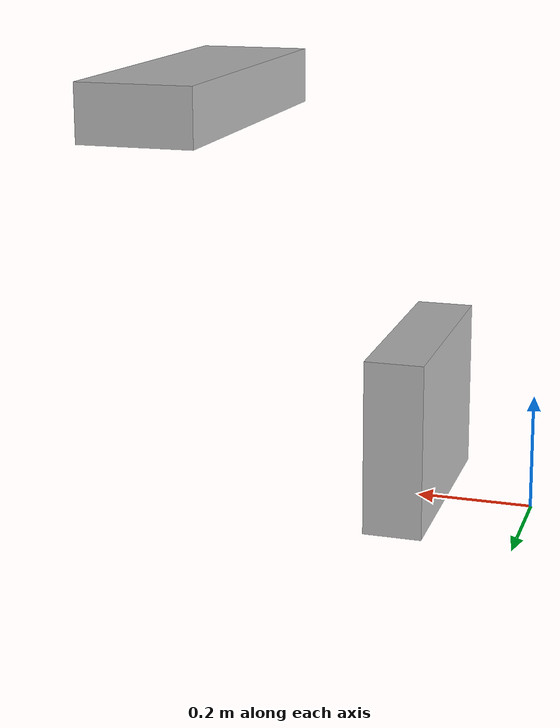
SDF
<?xml version="1.0" ?>
<sdf version="1.4">
  <world name="default">
    <include>
      <uri>model://sun</uri>
    </include>

    <model name="obs1">
      <pose>0.6 0 0.7 0 0 0</pose>
      <static>1</static>
      <link name="link">
        <visual name="visual">
          <geometry>
            <box>
              <size>0.2 0.6 0.1</size>
            </box>
          </geometry>
        </visual>
        <collision name='collision'>
          <laser_retro>0</laser_retro>
          <geometry>
            <box>
              <size>0.2 0.6 0.1</size>
            </box>
          </geometry>
        </collision>
      </link>
    </model>

    <model name="obs2">
      <pose>0.2 -0.0 0.15 0 0 0</pose>
      <static>1</static>
      <link name="link">
        <visual name="visual">
          <geometry>
            <box>
              <size>0.1 0.4 0.3</size>
            </box>
          </geometry>
        </visual>
        <collision name='collision'>
          <laser_retro>0</laser_retro>
          <geometry>
            <box>
              <size>0.1 0.4 0.3</size>
            </box>
          </geometry>
        </collision>
      </link>
    </model>
  </world>
</sdf>
